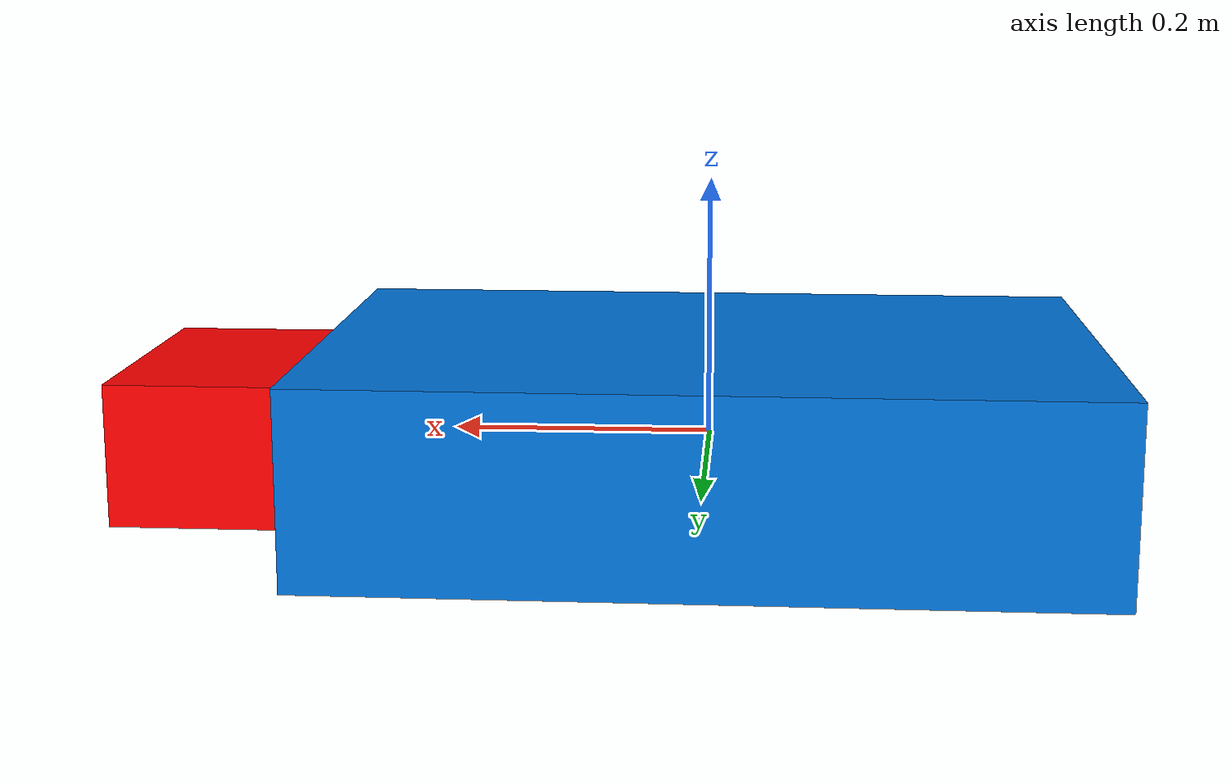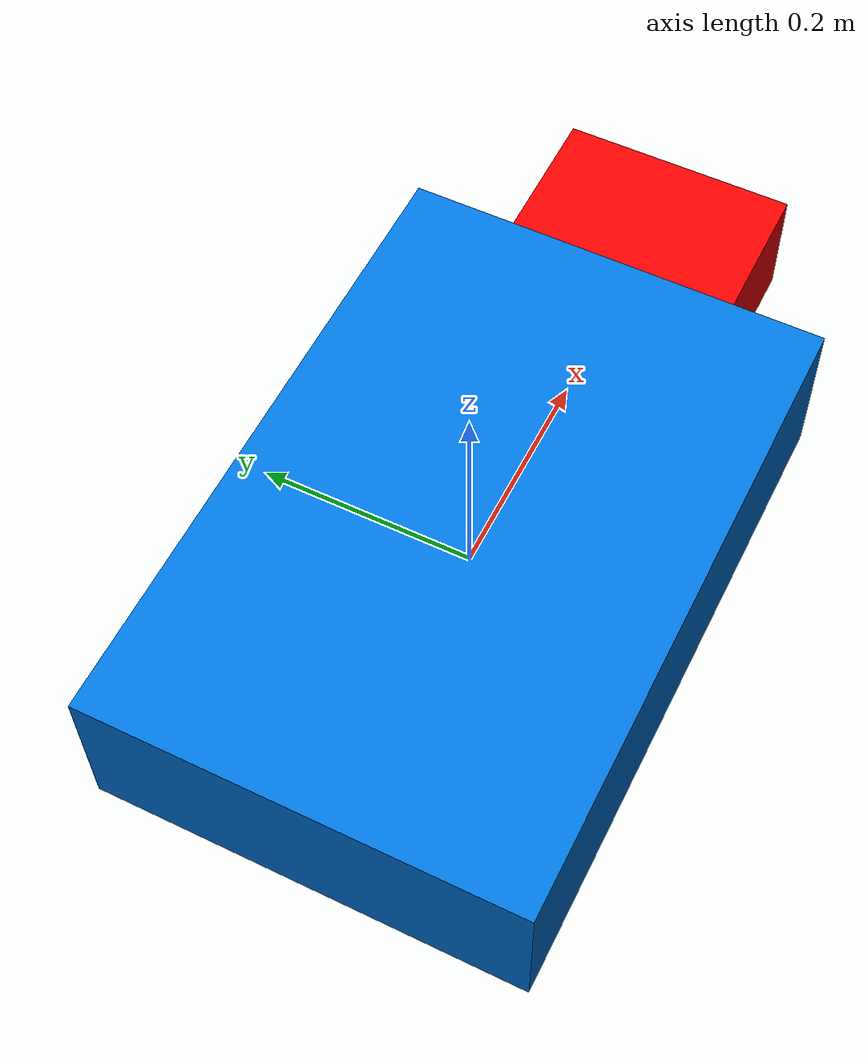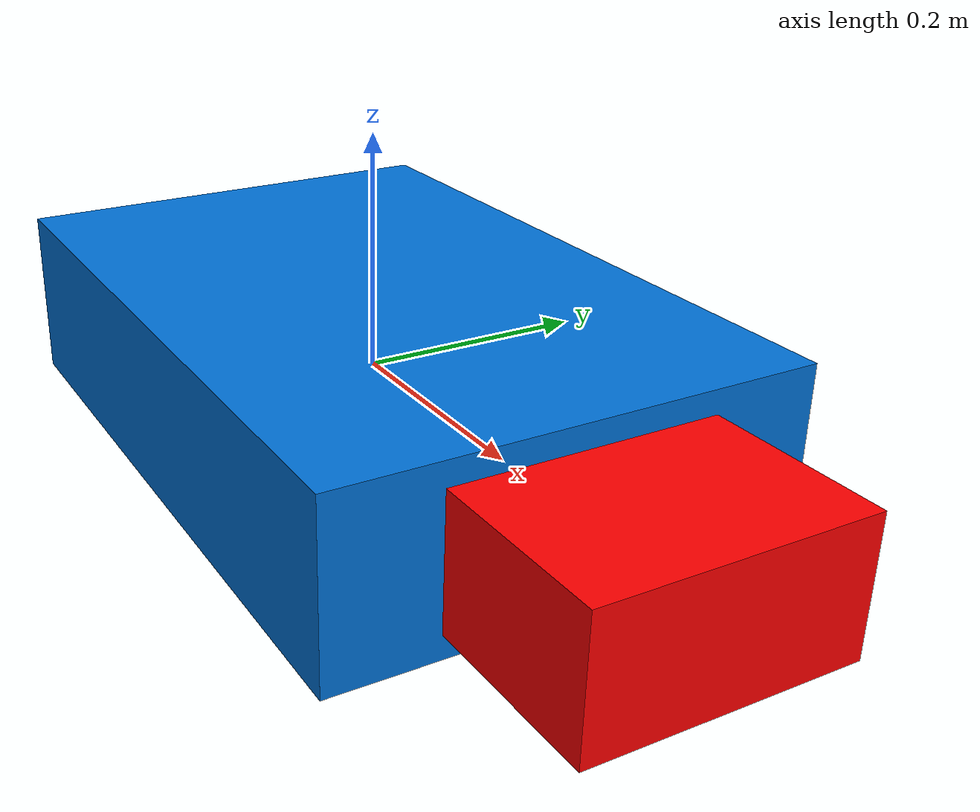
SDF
<?xml version="1.0"?>
<sdf version="1.9">
  <model name="vehicle">
    <link name="body">
      <inertial>
        <mass>1.0</mass>
        <inertia>
          <ixx>0.1</ixx>
          <iyy>0.1</iyy>
          <izz>0.1</izz>
        </inertia>
      </inertial>
      <visual name="visual">
        <geometry>
          <box>
            <size>0.6 0.4 0.15</size>
          </box>
        </geometry>
        <material>
          <ambient>0.0 0.35 0.75 1.0</ambient>
          <diffuse>0.0 0.45 0.85 1.0</diffuse>
          <specular>0.6 0.6 0.6 1.0</specular>
        </material>
      </visual>
      <visual name="front">
        <pose>0.375 0 0 0 0 0</pose>
        <geometry>
          <box><size>0.15 0.22 0.11</size></box>
        </geometry>
        <material>
          <ambient>0.8 0.0 0.0 1.0</ambient>
          <diffuse>1.0 0.0 0.0 1.0</diffuse>
        </material>
      </visual>
      <collision name="front_collision">
        <pose>0.375 0 0 0 0 0</pose>
        <geometry>
          <box><size>0.15 0.22 0.11</size></box>
        </geometry>
      </collision>
      <collision name="collision">
        <geometry>
          <box>
            <size>0.6 0.4 0.15</size>
          </box>
        </geometry>
      </collision>
    </link>
  </model>
</sdf>
